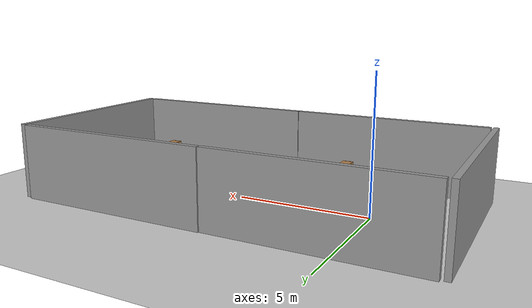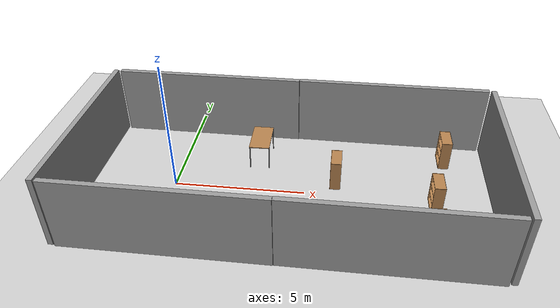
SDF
<sdf version="1.6">
 <world name="default">
  <light name="sun" type="directional">
   <pose>0 0 10 0 -0 0</pose>
   <diffuse>0.8 0.8 0.8 1</diffuse>
   <specular>0.2 0.2 0.2 1</specular>
   <attenuation>
    <range>1000</range>
    <constant>0.9</constant>
    <linear>0.01</linear>
    <quadratic>0.001</quadratic>
   </attenuation>
   <direction>-0.5 0.1 -0.9</direction>
  </light>
  <model name="ground_plane">
   <static>1</static>
   <link name="link">
    <collision name="collision">
     <geometry><plane><normal>0 0 1</normal><size>100 100</size></plane></geometry>
     <surface>
      <contact><collide_bitmask>65535</collide_bitmask></contact>
      <friction><ode><mu>100</mu><mu2>50</mu2></ode></friction>
     </surface>
    </collision>
    <visual name="visual">
     <cast_shadows>0</cast_shadows>
     <geometry><plane><normal>0 0 1</normal><size>100 100</size></plane></geometry>
     <material>
      <script><uri>file://media/materials/scripts/gazebo.material</uri><name>Gazebo/Grey</name></script>
     </material>
    </visual>
   </link>
  </model>
  <gravity>0 0 -9.8</gravity>
  <magnetic_field>6e-06 2.3e-05 -4.2e-05</magnetic_field>
  <atmosphere type="adiabatic"/>
  <physics name="default_physics" default="0" type="ode">
   <max_step_size>0.001</max_step_size>
   <real_time_factor>1</real_time_factor>
   <real_time_update_rate>1000</real_time_update_rate>
  </physics>
  <scene><ambient>0.4 0.4 0.4 1</ambient><background>0.7 0.7 0.7 1</background><shadows>1</shadows></scene>
  <audio><device>default</device></audio>
  <spherical_coordinates>
   <surface_model>EARTH_WGS84</surface_model>
   <latitude_deg>0</latitude_deg>
   <longitude_deg>0</longitude_deg>
   <elevation>0</elevation>
   <heading_deg>0</heading_deg>
  </spherical_coordinates>
  <model name="grey_wall">
   <static>1</static>
   <link name="link">
    <pose>0 0 1.4 0 -0 0</pose>
    <collision name="collision"><geometry><box><size>7.5 0.2 2.8</size></box></geometry></collision>
    <visual name="visual">
     <cast_shadows>0</cast_shadows>
     <geometry><box><size>7.5 0.2 2.8</size></box></geometry>
     <material>
      <script>
       <uri>model://grey_wall/materials/scripts</uri>
       <uri>model://grey_wall/materials/textures</uri>
       <name>vrc/grey_wall</name>
      </script>
     </material>
    </visual>
   </link>
   <pose>0.653847 3.73108 0 0 -0 0</pose>
  </model>
  <model name="grey_wall_0">
   <static>1</static>
   <link name="link">
    <pose>0 0 1.4 0 -0 0</pose>
    <collision name="collision"><geometry><box><size>7.5 0.2 2.8</size></box></geometry></collision>
    <visual name="visual">
     <cast_shadows>0</cast_shadows>
     <geometry><box><size>7.5 0.2 2.8</size></box></geometry>
     <material>
      <script>
       <uri>model://grey_wall/materials/scripts</uri>
       <uri>model://grey_wall/materials/textures</uri>
       <name>vrc/grey_wall</name>
      </script>
     </material>
    </visual>
   </link>
   <pose>0.603956 -3.71908 0 0 -0 0</pose>
  </model>
  <model name="grey_wall_1">
   <static>1</static>
   <link name="link">
    <pose>0 0 1.4 0 -0 0</pose>
    <collision name="collision"><geometry><box><size>7.5 0.2 2.8</size></box></geometry></collision>
    <visual name="visual">
     <cast_shadows>0</cast_shadows>
     <geometry><box><size>7.5 0.2 2.8</size></box></geometry>
     <material>
      <script>
       <uri>model://grey_wall/materials/scripts</uri>
       <uri>model://grey_wall/materials/textures</uri>
       <name>vrc/grey_wall</name>
      </script>
     </material>
    </visual>
   </link>
   <pose>8.16777 3.76232 0 0 -0 0</pose>
  </model>
  <model name="grey_wall_2">
   <static>1</static>
   <link name="link">
    <pose>0 0 1.4 0 -0 0</pose>
    <collision name="collision"><geometry><box><size>7.5 0.2 2.8</size></box></geometry></collision>
    <visual name="visual">
     <cast_shadows>0</cast_shadows>
     <geometry><box><size>7.5 0.2 2.8</size></box></geometry>
     <material>
      <script>
       <uri>model://grey_wall/materials/scripts</uri>
       <uri>model://grey_wall/materials/textures</uri>
       <name>vrc/grey_wall</name>
      </script>
     </material>
    </visual>
   </link>
   <pose>8.11326 -3.70462 0 0 -0 0</pose>
  </model>
  <model name="grey_wall_3">
   <static>1</static>
   <link name="link">
    <pose>0 0 1.4 0 -0 0</pose>
    <collision name="collision"><geometry><box><size>7.5 0.2 2.8</size></box></geometry></collision>
    <visual name="visual">
     <cast_shadows>0</cast_shadows>
     <geometry><box><size>7.5 0.2 2.8</size></box></geometry>
     <material>
      <script>
       <uri>model://grey_wall/materials/scripts</uri>
       <uri>model://grey_wall/materials/textures</uri>
       <name>vrc/grey_wall</name>
      </script>
     </material>
    </visual>
   </link>
   <pose>-3.30515 -0.019582 0 0 0 -1.57459</pose>
  </model>
  <model name="table">
   <static>1</static>
   <link name="link">
    <collision name="surface">
     <pose>0 0 1 0 -0 0</pose>
     <geometry><box><size>1.5 0.8 0.03</size></box></geometry>
     <surface><friction><ode><mu>0.6</mu><mu2>0.6</mu2></ode></friction></surface>
    </collision>
    <visual name="visual1">
     <pose>0 0 1 0 -0 0</pose>
     <geometry><box><size>1.5 0.8 0.03</size></box></geometry>
     <material>
      <script><uri>file://media/materials/scripts/gazebo.material</uri><name>Gazebo/Wood</name></script>
     </material>
    </visual>
    <collision name="front_left_leg">
     <pose>0.68 0.38 0.5 0 -0 0</pose>
     <geometry><cylinder><radius>0.02</radius><length>1</length></cylinder></geometry>
    </collision>
    <visual name="front_left_leg">
     <pose>0.68 0.38 0.5 0 -0 0</pose>
     <geometry><cylinder><radius>0.02</radius><length>1</length></cylinder></geometry>
     <material>
      <script><uri>file://media/materials/scripts/gazebo.material</uri><name>Gazebo/Grey</name></script>
     </material>
    </visual>
    <collision name="front_right_leg">
     <pose>0.68 -0.38 0.5 0 -0 0</pose>
     <geometry><cylinder><radius>0.02</radius><length>1</length></cylinder></geometry>
    </collision>
    <visual name="front_right_leg">
     <pose>0.68 -0.38 0.5 0 -0 0</pose>
     <geometry><cylinder><radius>0.02</radius><length>1</length></cylinder></geometry>
     <material>
      <script><uri>file://media/materials/scripts/gazebo.material</uri><name>Gazebo/Grey</name></script>
     </material>
    </visual>
    <collision name="back_right_leg">
     <pose>-0.68 -0.38 0.5 0 -0 0</pose>
     <geometry><cylinder><radius>0.02</radius><length>1</length></cylinder></geometry>
    </collision>
    <visual name="back_right_leg">
     <pose>-0.68 -0.38 0.5 0 -0 0</pose>
     <geometry><cylinder><radius>0.02</radius><length>1</length></cylinder></geometry>
     <material>
      <script><uri>file://media/materials/scripts/gazebo.material</uri><name>Gazebo/Grey</name></script>
     </material>
    </visual>
    <collision name="back_left_leg">
     <pose>-0.68 0.38 0.5 0 -0 0</pose>
     <geometry><cylinder><radius>0.02</radius><length>1</length></cylinder></geometry>
    </collision>
    <visual name="back_left_leg">
     <pose>-0.68 0.38 0.5 0 -0 0</pose>
     <geometry><cylinder><radius>0.02</radius><length>1</length></cylinder></geometry>
     <material>
      <script><uri>file://media/materials/scripts/gazebo.material</uri><name>Gazebo/Grey</name></script>
     </material>
    </visual>
   </link>
   <pose>3.06548 2.09077 0 0 0 -1.54965</pose>
  </model>
  <model name="bookshelf">
   <static>1</static>
   <link name="link">
    <inertial><mass>1</mass></inertial>
    <collision name="back">
     <pose>0 0.005 0.6 0 -0 0</pose>
     <geometry><box><size>0.9 0.01 1.2</size></box></geometry>
    </collision>
    <visual name="visual1">
     <pose>0 0.005 0.6 0 -0 0</pose>
     <geometry><box><size>0.9 0.01 1.2</size></box></geometry>
     <material>
      <script><uri>file://media/materials/scripts/gazebo.material</uri><name>Gazebo/Wood</name></script>
     </material>
    </visual>
    <collision name="left_side">
     <pose>0.45 -0.195 0.6 0 -0 0</pose>
     <geometry><box><size>0.02 0.4 1.2</size></box></geometry>
    </collision>
    <visual name="visual2">
     <pose>0.45 -0.195 0.6 0 -0 0</pose>
     <geometry><box><size>0.02 0.4 1.2</size></box></geometry>
     <material>
      <script><uri>file://media/materials/scripts/gazebo.material</uri><name>Gazebo/Wood</name></script>
     </material>
    </visual>
    <collision name="right_side">
     <pose>-0.45 -0.195 0.6 0 -0 0</pose>
     <geometry><box><size>0.02 0.4 1.2</size></box></geometry>
    </collision>
    <visual name="visual3">
     <pose>-0.45 -0.195 0.6 0 -0 0</pose>
     <geometry><box><size>0.02 0.4 1.2</size></box></geometry>
     <material>
      <script><uri>file://media/materials/scripts/gazebo.material</uri><name>Gazebo/Wood</name></script>
     </material>
    </visual>
    <collision name="bottom">
     <pose>0 -0.195 0.03 0 -0 0</pose>
     <geometry><box><size>0.88 0.4 0.06</size></box></geometry>
    </collision>
    <visual name="visual4">
     <pose>0 -0.195 0.03 0 -0 0</pose>
     <geometry><box><size>0.88 0.4 0.06</size></box></geometry>
     <material>
      <script><uri>file://media/materials/scripts/gazebo.material</uri><name>Gazebo/Wood</name></script>
     </material>
    </visual>
    <collision name="top">
     <pose>0 -0.195 1.19 0 -0 0</pose>
     <geometry><box><size>0.88 0.4 0.02</size></box></geometry>
    </collision>
    <visual name="visual5">
     <pose>0 -0.195 1.19 0 -0 0</pose>
     <geometry><box><size>0.88 0.4 0.02</size></box></geometry>
     <material>
      <script><uri>file://media/materials/scripts/gazebo.material</uri><name>Gazebo/Wood</name></script>
     </material>
    </visual>
    <collision name="low_shelf">
     <pose>0 -0.195 0.43 0 -0 0</pose>
     <geometry><box><size>0.88 0.4 0.02</size></box></geometry>
    </collision>
    <visual name="visual6">
     <pose>0 -0.195 0.43 0 -0 0</pose>
     <geometry><box><size>0.88 0.4 0.02</size></box></geometry>
     <material>
      <script><uri>file://media/materials/scripts/gazebo.material</uri><name>Gazebo/Wood</name></script>
     </material>
    </visual>
    <collision name="high_shelf">
     <pose>0 -0.195 0.8 0 -0 0</pose>
     <geometry><box><size>0.88 0.4 0.02</size></box></geometry>
    </collision>
    <visual name="visual7">
     <pose>0 -0.195 0.8 0 -0 0</pose>
     <geometry><box><size>0.88 0.4 0.02</size></box></geometry>
     <material>
      <script><uri>file://media/materials/scripts/gazebo.material</uri><name>Gazebo/Wood</name></script>
     </material>
    </visual>
   </link>
   <pose>5.95292 0.817322 0 0 -0 1.58143</pose>
  </model>
  <model name="bookshelf_0">
   <static>1</static>
   <link name="link">
    <inertial><mass>1</mass></inertial>
    <collision name="back">
     <pose>0 0.005 0.6 0 -0 0</pose>
     <geometry><box><size>0.9 0.01 1.2</size></box></geometry>
    </collision>
    <visual name="visual1">
     <pose>0 0.005 0.6 0 -0 0</pose>
     <geometry><box><size>0.9 0.01 1.2</size></box></geometry>
     <material>
      <script><uri>file://media/materials/scripts/gazebo.material</uri><name>Gazebo/Wood</name></script>
     </material>
    </visual>
    <collision name="left_side">
     <pose>0.45 -0.195 0.6 0 -0 0</pose>
     <geometry><box><size>0.02 0.4 1.2</size></box></geometry>
    </collision>
    <visual name="visual2">
     <pose>0.45 -0.195 0.6 0 -0 0</pose>
     <geometry><box><size>0.02 0.4 1.2</size></box></geometry>
     <material>
      <script><uri>file://media/materials/scripts/gazebo.material</uri><name>Gazebo/Wood</name></script>
     </material>
    </visual>
    <collision name="right_side">
     <pose>-0.45 -0.195 0.6 0 -0 0</pose>
     <geometry><box><size>0.02 0.4 1.2</size></box></geometry>
    </collision>
    <visual name="visual3">
     <pose>-0.45 -0.195 0.6 0 -0 0</pose>
     <geometry><box><size>0.02 0.4 1.2</size></box></geometry>
     <material>
      <script><uri>file://media/materials/scripts/gazebo.material</uri><name>Gazebo/Wood</name></script>
     </material>
    </visual>
    <collision name="bottom">
     <pose>0 -0.195 0.03 0 -0 0</pose>
     <geometry><box><size>0.88 0.4 0.06</size></box></geometry>
    </collision>
    <visual name="visual4">
     <pose>0 -0.195 0.03 0 -0 0</pose>
     <geometry><box><size>0.88 0.4 0.06</size></box></geometry>
     <material>
      <script><uri>file://media/materials/scripts/gazebo.material</uri><name>Gazebo/Wood</name></script>
     </material>
    </visual>
    <collision name="top">
     <pose>0 -0.195 1.19 0 -0 0</pose>
     <geometry><box><size>0.88 0.4 0.02</size></box></geometry>
    </collision>
    <visual name="visual5">
     <pose>0 -0.195 1.19 0 -0 0</pose>
     <geometry><box><size>0.88 0.4 0.02</size></box></geometry>
     <material>
      <script><uri>file://media/materials/scripts/gazebo.material</uri><name>Gazebo/Wood</name></script>
     </material>
    </visual>
    <collision name="low_shelf">
     <pose>0 -0.195 0.43 0 -0 0</pose>
     <geometry><box><size>0.88 0.4 0.02</size></box></geometry>
    </collision>
    <visual name="visual6">
     <pose>0 -0.195 0.43 0 -0 0</pose>
     <geometry><box><size>0.88 0.4 0.02</size></box></geometry>
     <material>
      <script><uri>file://media/materials/scripts/gazebo.material</uri><name>Gazebo/Wood</name></script>
     </material>
    </visual>
    <collision name="high_shelf">
     <pose>0 -0.195 0.8 0 -0 0</pose>
     <geometry><box><size>0.88 0.4 0.02</size></box></geometry>
    </collision>
    <visual name="visual7">
     <pose>0 -0.195 0.8 0 -0 0</pose>
     <geometry><box><size>0.88 0.4 0.02</size></box></geometry>
     <material>
      <script><uri>file://media/materials/scripts/gazebo.material</uri><name>Gazebo/Wood</name></script>
     </material>
    </visual>
   </link>
   <pose>1.58899 -2.21848 0 0 -0 1.59149</pose>
  </model>
  <model name="bookshelf_1">
   <static>1</static>
   <link name="link">
    <inertial><mass>1</mass></inertial>
    <collision name="back">
     <pose>0 0.005 0.6 0 -0 0</pose>
     <geometry><box><size>0.9 0.01 1.2</size></box></geometry>
    </collision>
    <visual name="visual1">
     <pose>0 0.005 0.6 0 -0 0</pose>
     <geometry><box><size>0.9 0.01 1.2</size></box></geometry>
     <material>
      <script><uri>file://media/materials/scripts/gazebo.material</uri><name>Gazebo/Wood</name></script>
     </material>
    </visual>
    <collision name="left_side">
     <pose>0.45 -0.195 0.6 0 -0 0</pose>
     <geometry><box><size>0.02 0.4 1.2</size></box></geometry>
    </collision>
    <visual name="visual2">
     <pose>0.45 -0.195 0.6 0 -0 0</pose>
     <geometry><box><size>0.02 0.4 1.2</size></box></geometry>
     <material>
      <script><uri>file://media/materials/scripts/gazebo.material</uri><name>Gazebo/Wood</name></script>
     </material>
    </visual>
    <collision name="right_side">
     <pose>-0.45 -0.195 0.6 0 -0 0</pose>
     <geometry><box><size>0.02 0.4 1.2</size></box></geometry>
    </collision>
    <visual name="visual3">
     <pose>-0.45 -0.195 0.6 0 -0 0</pose>
     <geometry><box><size>0.02 0.4 1.2</size></box></geometry>
     <material>
      <script><uri>file://media/materials/scripts/gazebo.material</uri><name>Gazebo/Wood</name></script>
     </material>
    </visual>
    <collision name="bottom">
     <pose>0 -0.195 0.03 0 -0 0</pose>
     <geometry><box><size>0.88 0.4 0.06</size></box></geometry>
    </collision>
    <visual name="visual4">
     <pose>0 -0.195 0.03 0 -0 0</pose>
     <geometry><box><size>0.88 0.4 0.06</size></box></geometry>
     <material>
      <script><uri>file://media/materials/scripts/gazebo.material</uri><name>Gazebo/Wood</name></script>
     </material>
    </visual>
    <collision name="top">
     <pose>0 -0.195 1.19 0 -0 0</pose>
     <geometry><box><size>0.88 0.4 0.02</size></box></geometry>
    </collision>
    <visual name="visual5">
     <pose>0 -0.195 1.19 0 -0 0</pose>
     <geometry><box><size>0.88 0.4 0.02</size></box></geometry>
     <material>
      <script><uri>file://media/materials/scripts/gazebo.material</uri><name>Gazebo/Wood</name></script>
     </material>
    </visual>
    <collision name="low_shelf">
     <pose>0 -0.195 0.43 0 -0 0</pose>
     <geometry><box><size>0.88 0.4 0.02</size></box></geometry>
    </collision>
    <visual name="visual6">
     <pose>0 -0.195 0.43 0 -0 0</pose>
     <geometry><box><size>0.88 0.4 0.02</size></box></geometry>
     <material>
      <script><uri>file://media/materials/scripts/gazebo.material</uri><name>Gazebo/Wood</name></script>
     </material>
    </visual>
    <collision name="high_shelf">
     <pose>0 -0.195 0.8 0 -0 0</pose>
     <geometry><box><size>0.88 0.4 0.02</size></box></geometry>
    </collision>
    <visual name="visual7">
     <pose>0 -0.195 0.8 0 -0 0</pose>
     <geometry><box><size>0.88 0.4 0.02</size></box></geometry>
     <material>
      <script><uri>file://media/materials/scripts/gazebo.material</uri><name>Gazebo/Wood</name></script>
     </material>
    </visual>
   </link>
   <pose>9.9811 -2.13102 0 0 0 -1.54865</pose>
  </model>
  <model name="bookshelf_2">
   <static>1</static>
   <link name="link">
    <inertial><mass>1</mass></inertial>
    <collision name="back">
     <pose>0 0.005 0.6 0 -0 0</pose>
     <geometry><box><size>0.9 0.01 1.2</size></box></geometry>
    </collision>
    <visual name="visual1">
     <pose>0 0.005 0.6 0 -0 0</pose>
     <geometry><box><size>0.9 0.01 1.2</size></box></geometry>
     <material>
      <script><uri>file://media/materials/scripts/gazebo.material</uri><name>Gazebo/Wood</name></script>
     </material>
    </visual>
    <collision name="left_side">
     <pose>0.45 -0.195 0.6 0 -0 0</pose>
     <geometry><box><size>0.02 0.4 1.2</size></box></geometry>
    </collision>
    <visual name="visual2">
     <pose>0.45 -0.195 0.6 0 -0 0</pose>
     <geometry><box><size>0.02 0.4 1.2</size></box></geometry>
     <material>
      <script><uri>file://media/materials/scripts/gazebo.material</uri><name>Gazebo/Wood</name></script>
     </material>
    </visual>
    <collision name="right_side">
     <pose>-0.45 -0.195 0.6 0 -0 0</pose>
     <geometry><box><size>0.02 0.4 1.2</size></box></geometry>
    </collision>
    <visual name="visual3">
     <pose>-0.45 -0.195 0.6 0 -0 0</pose>
     <geometry><box><size>0.02 0.4 1.2</size></box></geometry>
     <material>
      <script><uri>file://media/materials/scripts/gazebo.material</uri><name>Gazebo/Wood</name></script>
     </material>
    </visual>
    <collision name="bottom">
     <pose>0 -0.195 0.03 0 -0 0</pose>
     <geometry><box><size>0.88 0.4 0.06</size></box></geometry>
    </collision>
    <visual name="visual4">
     <pose>0 -0.195 0.03 0 -0 0</pose>
     <geometry><box><size>0.88 0.4 0.06</size></box></geometry>
     <material>
      <script><uri>file://media/materials/scripts/gazebo.material</uri><name>Gazebo/Wood</name></script>
     </material>
    </visual>
    <collision name="top">
     <pose>0 -0.195 1.19 0 -0 0</pose>
     <geometry><box><size>0.88 0.4 0.02</size></box></geometry>
    </collision>
    <visual name="visual5">
     <pose>0 -0.195 1.19 0 -0 0</pose>
     <geometry><box><size>0.88 0.4 0.02</size></box></geometry>
     <material>
      <script><uri>file://media/materials/scripts/gazebo.material</uri><name>Gazebo/Wood</name></script>
     </material>
    </visual>
    <collision name="low_shelf">
     <pose>0 -0.195 0.43 0 -0 0</pose>
     <geometry><box><size>0.88 0.4 0.02</size></box></geometry>
    </collision>
    <visual name="visual6">
     <pose>0 -0.195 0.43 0 -0 0</pose>
     <geometry><box><size>0.88 0.4 0.02</size></box></geometry>
     <material>
      <script><uri>file://media/materials/scripts/gazebo.material</uri><name>Gazebo/Wood</name></script>
     </material>
    </visual>
    <collision name="high_shelf">
     <pose>0 -0.195 0.8 0 -0 0</pose>
     <geometry><box><size>0.88 0.4 0.02</size></box></geometry>
    </collision>
    <visual name="visual7">
     <pose>0 -0.195 0.8 0 -0 0</pose>
     <geometry><box><size>0.88 0.4 0.02</size></box></geometry>
     <material>
      <script><uri>file://media/materials/scripts/gazebo.material</uri><name>Gazebo/Wood</name></script>
     </material>
    </visual>
   </link>
   <pose>10.0607 -0.195181 0 0 0 -1.55273</pose>
  </model>
  <model name="bookshelf_3">
   <static>1</static>
   <link name="link">
    <inertial><mass>1</mass></inertial>
    <collision name="back">
     <pose>0 0.005 0.6 0 -0 0</pose>
     <geometry><box><size>0.9 0.01 1.2</size></box></geometry>
    </collision>
    <visual name="visual1">
     <pose>0 0.005 0.6 0 -0 0</pose>
     <geometry><box><size>0.9 0.01 1.2</size></box></geometry>
     <material>
      <script><uri>file://media/materials/scripts/gazebo.material</uri><name>Gazebo/Wood</name></script>
     </material>
    </visual>
    <collision name="left_side">
     <pose>0.45 -0.195 0.6 0 -0 0</pose>
     <geometry><box><size>0.02 0.4 1.2</size></box></geometry>
    </collision>
    <visual name="visual2">
     <pose>0.45 -0.195 0.6 0 -0 0</pose>
     <geometry><box><size>0.02 0.4 1.2</size></box></geometry>
     <material>
      <script><uri>file://media/materials/scripts/gazebo.material</uri><name>Gazebo/Wood</name></script>
     </material>
    </visual>
    <collision name="right_side">
     <pose>-0.45 -0.195 0.6 0 -0 0</pose>
     <geometry><box><size>0.02 0.4 1.2</size></box></geometry>
    </collision>
    <visual name="visual3">
     <pose>-0.45 -0.195 0.6 0 -0 0</pose>
     <geometry><box><size>0.02 0.4 1.2</size></box></geometry>
     <material>
      <script><uri>file://media/materials/scripts/gazebo.material</uri><name>Gazebo/Wood</name></script>
     </material>
    </visual>
    <collision name="bottom">
     <pose>0 -0.195 0.03 0 -0 0</pose>
     <geometry><box><size>0.88 0.4 0.06</size></box></geometry>
    </collision>
    <visual name="visual4">
     <pose>0 -0.195 0.03 0 -0 0</pose>
     <geometry><box><size>0.88 0.4 0.06</size></box></geometry>
     <material>
      <script><uri>file://media/materials/scripts/gazebo.material</uri><name>Gazebo/Wood</name></script>
     </material>
    </visual>
    <collision name="top">
     <pose>0 -0.195 1.19 0 -0 0</pose>
     <geometry><box><size>0.88 0.4 0.02</size></box></geometry>
    </collision>
    <visual name="visual5">
     <pose>0 -0.195 1.19 0 -0 0</pose>
     <geometry><box><size>0.88 0.4 0.02</size></box></geometry>
     <material>
      <script><uri>file://media/materials/scripts/gazebo.material</uri><name>Gazebo/Wood</name></script>
     </material>
    </visual>
    <collision name="low_shelf">
     <pose>0 -0.195 0.43 0 -0 0</pose>
     <geometry><box><size>0.88 0.4 0.02</size></box></geometry>
    </collision>
    <visual name="visual6">
     <pose>0 -0.195 0.43 0 -0 0</pose>
     <geometry><box><size>0.88 0.4 0.02</size></box></geometry>
     <material>
      <script><uri>file://media/materials/scripts/gazebo.material</uri><name>Gazebo/Wood</name></script>
     </material>
    </visual>
    <collision name="high_shelf">
     <pose>0 -0.195 0.8 0 -0 0</pose>
     <geometry><box><size>0.88 0.4 0.02</size></box></geometry>
    </collision>
    <visual name="visual7">
     <pose>0 -0.195 0.8 0 -0 0</pose>
     <geometry><box><size>0.88 0.4 0.02</size></box></geometry>
     <material>
      <script><uri>file://media/materials/scripts/gazebo.material</uri><name>Gazebo/Wood</name></script>
     </material>
    </visual>
   </link>
   <pose>10.5919 2.65211 0 4.5e-05 0.003209 -1.55686</pose>
  </model>
  <model name="grey_wall_4">
   <static>1</static>
   <link name="link">
    <pose>0 0 1.4 0 -0 0</pose>
    <collision name="collision"><geometry><box><size>7.5 0.2 2.8</size></box></geometry></collision>
    <visual name="visual">
     <cast_shadows>0</cast_shadows>
     <geometry><box><size>7.5 0.2 2.8</size></box></geometry>
     <material>
      <script>
       <uri>model://grey_wall/materials/scripts</uri>
       <uri>model://grey_wall/materials/textures</uri>
       <name>vrc/grey_wall</name>
      </script>
     </material>
    </visual>
   </link>
   <pose>12.0755 0.018708 0 0 0 -1.57738</pose>
  </model>
 </world>
</sdf>
